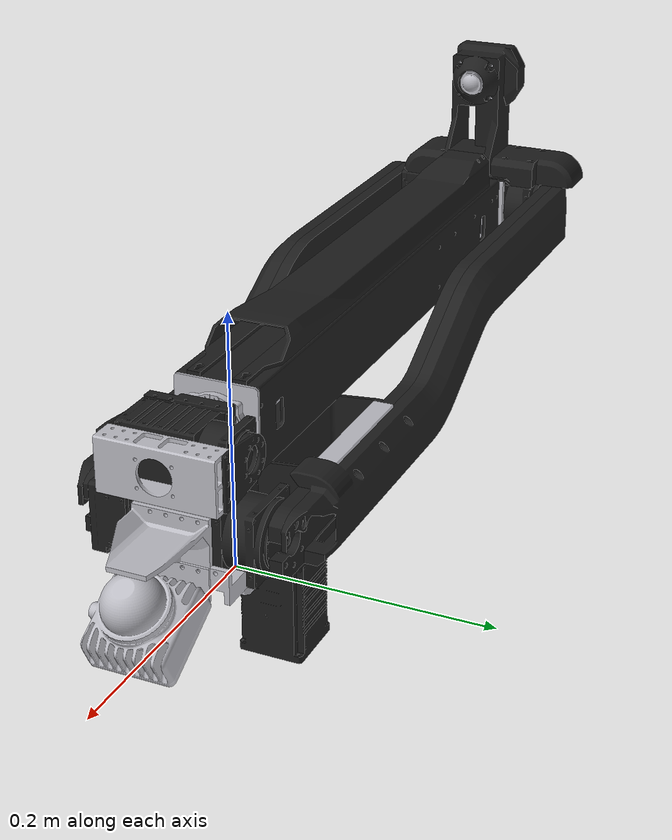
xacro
<?xml version="1.0" ?>
<robot name="armbasicmk2_rf" xmlns:xacro="http://www.ros.org/wiki/xacro">

<xacro:include filename="$(find armbasicmk2_rf_description)/urdf/armbasicmk2_rf.trans" />
<xacro:include filename="$(find armbasicmk2_rf_description)/urdf/armbasicmk2_rf.gazebo" />
<link name="base_link">
  <inertial>
    <origin xyz="6.800860772596329e-14 3.691305239142602e-18 0.007330088098766174" rpy="0 0 0"/>
    <mass value="0.10740993249483455"/>
    <inertia ixx="3.3e-05" iyy="4.4e-05" izz="7.3e-05" ixy="0.0" iyz="-0.0" ixz="-0.0"/>
  </inertial>
  <visual>
    <origin xyz="0 0 0" rpy="0 0 0"/>
    <geometry>
      <mesh filename="file://$(find armbasicmk2_rf_description)/meshes/base_link.stl" scale="0.001 0.001 0.001"/>
    </geometry>
    <material name="silver"/>
  </visual>
  <collision>
    <origin xyz="0 0 0" rpy="0 0 0"/>
    <geometry>
      <mesh filename="file://$(find armbasicmk2_rf_description)/meshes/base_link.stl" scale="0.001 0.001 0.001"/>
    </geometry>
  </collision>
</link>

<link name="motorattachment_rf_1">
  <inertial>
    <origin xyz="0.02927037371339208 1.1714766693985926e-06 0.010542658979876152" rpy="0 0 0"/>
    <mass value="0.2298484861301906"/>
    <inertia ixx="0.000186" iyy="0.0003" izz="0.000454" ixy="-0.0" iyz="-0.0" ixz="-3e-05"/>
  </inertial>
  <visual>
    <origin xyz="0.0 0.0 -0.027" rpy="0 0 0"/>
    <geometry>
      <mesh filename="file://$(find armbasicmk2_rf_description)/meshes/motorattachment_rf_1.stl" scale="0.001 0.001 0.001"/>
    </geometry>
    <material name="silver"/>
  </visual>
  <collision>
    <origin xyz="0.0 0.0 -0.027" rpy="0 0 0"/>
    <geometry>
      <mesh filename="file://$(find armbasicmk2_rf_description)/meshes/motorattachment_rf_1.stl" scale="0.001 0.001 0.001"/>
    </geometry>
  </collision>
</link>

<link name="sholder_motor_1">
  <inertial>
    <origin xyz="-0.026999999999992655 0.0017467971715640883 0.017998909469088657" rpy="0 0 0"/>
    <mass value="0.899469772806751"/>
    <inertia ixx="0.001425" iyy="0.0004" izz="0.001422" ixy="0.0" iyz="-0.0" ixz="0.0"/>
  </inertial>
  <visual>
    <origin xyz="-0.085 0.003 -0.052" rpy="0 0 0"/>
    <geometry>
      <mesh filename="file://$(find armbasicmk2_rf_description)/meshes/sholder_motor_1.stl" scale="0.001 0.001 0.001"/>
    </geometry>
    <material name="black"/>
  </visual>
  <collision>
    <origin xyz="-0.085 0.003 -0.052" rpy="0 0 0"/>
    <geometry>
      <mesh filename="file://$(find armbasicmk2_rf_description)/meshes/sholder_motor_1.stl" scale="0.001 0.001 0.001"/>
    </geometry>
  </collision>
</link>

<link name="cfrp_arm_under_1">
  <inertial>
    <origin xyz="-0.275257878200658 -0.06599999999999988 0.028271716393075658" rpy="0 0 0"/>
    <mass value="0.8180160660555457"/>
    <inertia ixx="0.004845" iyy="0.021811" izz="0.025227" ixy="-0.0" iyz="0.0" ixz="0.003056"/>
  </inertial>
  <visual>
    <origin xyz="-0.058 -0.066 -0.07" rpy="0 0 0"/>
    <geometry>
      <mesh filename="file://$(find armbasicmk2_rf_description)/meshes/cfrp_arm_under_1.stl" scale="0.001 0.001 0.001"/>
    </geometry>
    <material name="black"/>
  </visual>
  <collision>
    <origin xyz="-0.058 -0.066 -0.07" rpy="0 0 0"/>
    <geometry>
      <mesh filename="file://$(find armbasicmk2_rf_description)/meshes/cfrp_arm_under_1.stl" scale="0.001 0.001 0.001"/>
    </geometry>
  </collision>
</link>

<link name="armspacer3mm_1">
  <inertial>
    <origin xyz="0.005836245443908823 -0.06599999999999992 -0.02377415438949776" rpy="0 0 0"/>
    <mass value="0.1425135830976817"/>
    <inertia ixx="0.000291" iyy="0.000297" izz="0.000517" ixy="-0.0" iyz="0.0" ixz="1.6e-05"/>
  </inertial>
  <visual>
    <origin xyz="0.057 -0.066 -0.089" rpy="0 0 0"/>
    <geometry>
      <mesh filename="file://$(find armbasicmk2_rf_description)/meshes/armspacer3mm_1.stl" scale="0.001 0.001 0.001"/>
    </geometry>
    <material name="black"/>
  </visual>
  <collision>
    <origin xyz="0.057 -0.066 -0.089" rpy="0 0 0"/>
    <geometry>
      <mesh filename="file://$(find armbasicmk2_rf_description)/meshes/armspacer3mm_1.stl" scale="0.001 0.001 0.001"/>
    </geometry>
  </collision>
</link>

<link name="uchan_fix_1">
  <inertial>
    <origin xyz="2.0816681711721685e-17 -0.076 -0.018999999517699942" rpy="0 0 0"/>
    <mass value="0.07219571900435875"/>
    <inertia ixx="0.00039" iyy="0.000102" izz="0.000414" ixy="-0.0" iyz="0.0" ixz="-0.0"/>
  </inertial>
  <visual>
    <origin xyz="0.057 -0.076 -0.089" rpy="0 0 0"/>
    <geometry>
      <mesh filename="file://$(find armbasicmk2_rf_description)/meshes/uchan_fix_1.stl" scale="0.001 0.001 0.001"/>
    </geometry>
    <material name="silver"/>
  </visual>
  <collision>
    <origin xyz="0.057 -0.076 -0.089" rpy="0 0 0"/>
    <geometry>
      <mesh filename="file://$(find armbasicmk2_rf_description)/meshes/uchan_fix_1.stl" scale="0.001 0.001 0.001"/>
    </geometry>
  </collision>
</link>

<link name="elbow_motor_1">
  <inertial>
    <origin xyz="-1.2113498281673962e-06 -0.06173962440022222 4.82289042036399e-10" rpy="0 0 0"/>
    <mass value="0.8101156094698616"/>
    <inertia ixx="0.001155" iyy="0.000374" izz="0.001158" ixy="0.0" iyz="-0.0" ixz="-0.0"/>
  </inertial>
  <visual>
    <origin xyz="0.492 -0.066 -0.125" rpy="0 0 0"/>
    <geometry>
      <mesh filename="file://$(find armbasicmk2_rf_description)/meshes/elbow_motor_1.stl" scale="0.001 0.001 0.001"/>
    </geometry>
    <material name="black"/>
  </visual>
  <collision>
    <origin xyz="0.492 -0.066 -0.125" rpy="0 0 0"/>
    <geometry>
      <mesh filename="file://$(find armbasicmk2_rf_description)/meshes/elbow_motor_1.stl" scale="0.001 0.001 0.001"/>
    </geometry>
  </collision>
</link>

<link name="elbowmotorholder_1">
  <inertial>
    <origin xyz="0.01815412851963899 -0.032114384147279615 -0.026999999517700435" rpy="0 0 0"/>
    <mass value="0.11143415660851923"/>
    <inertia ixx="0.000119" iyy="7.7e-05" izz="7.1e-05" ixy="1e-06" iyz="0.0" ixz="0.0"/>
  </inertial>
  <visual>
    <origin xyz="0.474 -0.033 -0.152" rpy="0 0 0"/>
    <geometry>
      <mesh filename="file://$(find armbasicmk2_rf_description)/meshes/elbowmotorholder_1.stl" scale="0.001 0.001 0.001"/>
    </geometry>
    <material name="silver"/>
  </visual>
  <collision>
    <origin xyz="0.474 -0.033 -0.152" rpy="0 0 0"/>
    <geometry>
      <mesh filename="file://$(find armbasicmk2_rf_description)/meshes/elbowmotorholder_1.stl" scale="0.001 0.001 0.001"/>
    </geometry>
  </collision>
</link>

<link name="cfrppipe_1">
  <inertial>
    <origin xyz="0.23417559003974206 -0.017999999999999943 -0.029999999517700104" rpy="0 0 0"/>
    <mass value="0.4243002102107201"/>
    <inertia ixx="0.000554" iyy="0.00832" izz="0.008316" ixy="-0.0" iyz="0.0" ixz="-0.0"/>
  </inertial>
  <visual>
    <origin xyz="0.455 -0.018 -0.155" rpy="0 0 0"/>
    <geometry>
      <mesh filename="file://$(find armbasicmk2_rf_description)/meshes/cfrppipe_1.stl" scale="0.001 0.001 0.001"/>
    </geometry>
    <material name="black"/>
  </visual>
  <collision>
    <origin xyz="0.455 -0.018 -0.155" rpy="0 0 0"/>
    <geometry>
      <mesh filename="file://$(find armbasicmk2_rf_description)/meshes/cfrppipe_1.stl" scale="0.001 0.001 0.001"/>
    </geometry>
  </collision>
</link>

<link name="wrist_holder_1">
  <inertial>
    <origin xyz="0.00538687441616373 -0.017999999503902145 -0.030047351829839225" rpy="0 0 0"/>
    <mass value="0.0511359133055125"/>
    <inertia ixx="4.1e-05" iyy="2.1e-05" izz="2.1e-05" ixy="0.0" iyz="0.0" ixz="0.0"/>
  </inertial>
  <visual>
    <origin xyz="-0.014 -0.018 -0.155" rpy="0 0 0"/>
    <geometry>
      <mesh filename="file://$(find armbasicmk2_rf_description)/meshes/wrist_holder_1.stl" scale="0.001 0.001 0.001"/>
    </geometry>
    <material name="silver"/>
  </visual>
  <collision>
    <origin xyz="-0.014 -0.018 -0.155" rpy="0 0 0"/>
    <geometry>
      <mesh filename="file://$(find armbasicmk2_rf_description)/meshes/wrist_holder_1.stl" scale="0.001 0.001 0.001"/>
    </geometry>
  </collision>
</link>

<link name="innermotorspacer_1">
  <inertial>
    <origin xyz="-0.04607415020429145 0.029999999999997407 0.3140000004823033" rpy="0 0 0"/>
    <mass value="0.03944281423422913"/>
    <inertia ixx="4.3e-05" iyy="5.8e-05" izz="5.8e-05" ixy="0.0" iyz="0.0" ixz="0.0"/>
  </inertial>
  <visual>
    <origin xyz="0.318 0.03 0.189" rpy="0 0 0"/>
    <geometry>
      <mesh filename="file://$(find armbasicmk2_rf_description)/meshes/innermotorspacer_1.stl" scale="0.001 0.001 0.001"/>
    </geometry>
    <material name="silver"/>
  </visual>
  <collision>
    <origin xyz="0.318 0.03 0.189" rpy="0 0 0"/>
    <geometry>
      <mesh filename="file://$(find armbasicmk2_rf_description)/meshes/innermotorspacer_1.stl" scale="0.001 0.001 0.001"/>
    </geometry>
  </collision>
</link>

<link name="h54p_100_s500_r_dummy_1">
  <inertial>
    <origin xyz="-0.047039423233420585 0.02700000000000065 -0.018001318290201032" rpy="0 0 0"/>
    <mass value="0.7397940369372734"/>
    <inertia ixx="0.000324" iyy="0.000852" izz="0.00085" ixy="-0.0" iyz="0.0" ixz="-0.0"/>
  </inertial>
  <visual>
    <origin xyz="0.314 0.027 -0.143" rpy="0 0 0"/>
    <geometry>
      <mesh filename="file://$(find armbasicmk2_rf_description)/meshes/h54p_100_s500_r_dummy_1.stl" scale="0.001 0.001 0.001"/>
    </geometry>
    <material name="black"/>
  </visual>
  <collision>
    <origin xyz="0.314 0.027 -0.143" rpy="0 0 0"/>
    <geometry>
      <mesh filename="file://$(find armbasicmk2_rf_description)/meshes/h54p_100_s500_r_dummy_1.stl" scale="0.001 0.001 0.001"/>
    </geometry>
  </collision>
</link>

<link name="frange22_1">
  <inertial>
    <origin xyz="0.011970687825565818 1.0297993518602601e-13 4.823073052051541e-10" rpy="0 0 0"/>
    <mass value="0.030632417720102344"/>
    <inertia ixx="5e-06" iyy="6e-06" izz="6e-06" ixy="0.0" iyz="0.0" ixz="0.0"/>
  </inertial>
  <visual>
    <origin xyz="0.305 -0.0 -0.125" rpy="0 0 0"/>
    <geometry>
      <mesh filename="file://$(find armbasicmk2_rf_description)/meshes/frange22_1.stl" scale="0.001 0.001 0.001"/>
    </geometry>
    <material name="silver"/>
  </visual>
  <collision>
    <origin xyz="0.305 -0.0 -0.125" rpy="0 0 0"/>
    <geometry>
      <mesh filename="file://$(find armbasicmk2_rf_description)/meshes/frange22_1.stl" scale="0.001 0.001 0.001"/>
    </geometry>
  </collision>
</link>

<link name="cfrp_rotationver2525_1">
  <inertial>
    <origin xyz="0.13850000000000368 5.332715840388885e-16 -0.010999999517700282" rpy="0 0 0"/>
    <mass value="0.059325050880486084"/>
    <inertia ixx="1.1e-05" iyy="0.000434" izz="0.000434" ixy="-0.0" iyz="0.0" ixz="0.0"/>
  </inertial>
  <visual>
    <origin xyz="0.282 -0.0 -0.136" rpy="0 0 0"/>
    <geometry>
      <mesh filename="file://$(find armbasicmk2_rf_description)/meshes/cfrp_rotationver2525_1.stl" scale="0.001 0.001 0.001"/>
    </geometry>
    <material name="silver"/>
  </visual>
  <collision>
    <origin xyz="0.282 -0.0 -0.136" rpy="0 0 0"/>
    <geometry>
      <mesh filename="file://$(find armbasicmk2_rf_description)/meshes/cfrp_rotationver2525_1.stl" scale="0.001 0.001 0.001"/>
    </geometry>
  </collision>
</link>

<link name="tekubi_frange_22_1">
  <inertial>
    <origin xyz="0.017980403427289637 -2.401568404629577e-14 -0.01099999951769931" rpy="0 0 0"/>
    <mass value="0.05150765519894518"/>
    <inertia ixx="1e-05" iyy="1.2e-05" izz="1.3e-05" ixy="0.0" iyz="-0.0" ixz="0.0"/>
  </inertial>
  <visual>
    <origin xyz="0.005 -0.0 -0.136" rpy="0 0 0"/>
    <geometry>
      <mesh filename="file://$(find armbasicmk2_rf_description)/meshes/tekubi_frange_22_1.stl" scale="0.001 0.001 0.001"/>
    </geometry>
    <material name="silver"/>
  </visual>
  <collision>
    <origin xyz="0.005 -0.0 -0.136" rpy="0 0 0"/>
    <geometry>
      <mesh filename="file://$(find armbasicmk2_rf_description)/meshes/tekubi_frange_22_1.stl" scale="0.001 0.001 0.001"/>
    </geometry>
  </collision>
</link>

<link name="wrist2_motor_1">
  <inertial>
    <origin xyz="0.02553340999872098 -0.002308300673938236 -1.198818277980962e-08" rpy="0 0 0"/>
    <mass value="0.38815688084314187"/>
    <inertia ixx="0.000286" iyy="0.00012" izz="0.000292" ixy="-4e-06" iyz="-0.0" ixz="0.0"/>
  </inertial>
  <visual>
    <origin xyz="-0.031 -0.0 -0.125" rpy="0 0 0"/>
    <geometry>
      <mesh filename="file://$(find armbasicmk2_rf_description)/meshes/wrist2_motor_1.stl" scale="0.001 0.001 0.001"/>
    </geometry>
    <material name="black"/>
  </visual>
  <collision>
    <origin xyz="-0.031 -0.0 -0.125" rpy="0 0 0"/>
    <geometry>
      <mesh filename="file://$(find armbasicmk2_rf_description)/meshes/wrist2_motor_1.stl" scale="0.001 0.001 0.001"/>
    </geometry>
  </collision>
</link>

<link name="frp42_h02_1">
  <inertial>
    <origin xyz="0.01632608019843374 -0.044792311757179015 4.764381666966244e-10" rpy="0 0 0"/>
    <mass value="0.027142982651033515"/>
    <inertia ixx="6.2e-05" iyy="9e-06" izz="6.4e-05" ixy="-1e-06" iyz="0.0" ixz="0.0"/>
  </inertial>
  <visual>
    <origin xyz="-0.058 -0.045 -0.125" rpy="0 0 0"/>
    <geometry>
      <mesh filename="file://$(find armbasicmk2_rf_description)/meshes/frp42_h02_1.stl" scale="0.001 0.001 0.001"/>
    </geometry>
    <material name="black"/>
  </visual>
  <collision>
    <origin xyz="-0.058 -0.045 -0.125" rpy="0 0 0"/>
    <geometry>
      <mesh filename="file://$(find armbasicmk2_rf_description)/meshes/frp42_h02_1.stl" scale="0.001 0.001 0.001"/>
    </geometry>
  </collision>
</link>

<link name="hand_base_link_1">
  <inertial>
    <origin xyz="0.0036106433250461117 -0.04499999999991971 3.7601766145201054e-10" rpy="0 0 0"/>
    <mass value="0.077839787821002"/>
    <inertia ixx="8.6e-05" iyy="2.2e-05" izz="7e-05" ixy="-0.0" iyz="0.0" ixz="-0.0"/>
  </inertial>
  <visual>
    <origin xyz="-0.094 -0.045 -0.125" rpy="0 0 0"/>
    <geometry>
      <mesh filename="file://$(find armbasicmk2_rf_description)/meshes/hand_base_link_1.stl" scale="0.001 0.001 0.001"/>
    </geometry>
    <material name="silver"/>
  </visual>
  <collision>
    <origin xyz="-0.094 -0.045 -0.125" rpy="0 0 0"/>
    <geometry>
      <mesh filename="file://$(find armbasicmk2_rf_description)/meshes/hand_base_link_1.stl" scale="0.001 0.001 0.001"/>
    </geometry>
  </collision>
</link>

<link name="rf67f_outer_1">
  <inertial>
    <origin xyz="-1.0077634243141633e-15 -9.844948834505567e-18 0.0034161279081124495" rpy="0 0 0"/>
    <mass value="0.1131127772767721"/>
    <inertia ixx="9e-05" iyy="9e-05" izz="0.000178" ixy="0.0" iyz="0.0" ixz="-0.0"/>
  </inertial>
  <visual>
    <origin xyz="0.0 -0.0 -0.014" rpy="0 0 0"/>
    <geometry>
      <mesh filename="file://$(find armbasicmk2_rf_description)/meshes/rf67f_outer_1.stl" scale="0.001 0.001 0.001"/>
    </geometry>
    <material name="grey"/>
  </visual>
  <collision>
    <origin xyz="0.0 -0.0 -0.014" rpy="0 0 0"/>
    <geometry>
      <mesh filename="file://$(find armbasicmk2_rf_description)/meshes/rf67f_outer_1.stl" scale="0.001 0.001 0.001"/>
    </geometry>
  </collision>
</link>

<link name="rf67f_inner_1">
  <inertial>
    <origin xyz="-1.4410006952401435e-15 -6.314291484426093e-17 0.004082844222894467" rpy="0 0 0"/>
    <mass value="0.07950194317963732"/>
    <inertia ixx="3.4e-05" iyy="3.4e-05" izz="6.7e-05" ixy="0.0" iyz="-0.0" ixz="-0.0"/>
  </inertial>
  <visual>
    <origin xyz="-0.0 -0.0 -0.014" rpy="0 0 0"/>
    <geometry>
      <mesh filename="file://$(find armbasicmk2_rf_description)/meshes/rf67f_inner_1.stl" scale="0.001 0.001 0.001"/>
    </geometry>
    <material name="grey"/>
  </visual>
  <collision>
    <origin xyz="-0.0 -0.0 -0.014" rpy="0 0 0"/>
    <geometry>
      <mesh filename="file://$(find armbasicmk2_rf_description)/meshes/rf67f_inner_1.stl" scale="0.001 0.001 0.001"/>
    </geometry>
  </collision>
</link>

<link name="base_gear_1">
  <inertial>
    <origin xyz="-2.8478488522626362e-15 1.488595974649606e-17 0.005053416523161779" rpy="0 0 0"/>
    <mass value="0.054392339435549844"/>
    <inertia ixx="5.4e-05" iyy="5.4e-05" izz="0.000108" ixy="-0.0" iyz="-0.0" ixz="0.0"/>
  </inertial>
  <visual>
    <origin xyz="0.0 -0.0 -0.017" rpy="0 0 0"/>
    <geometry>
      <mesh filename="file://$(find armbasicmk2_rf_description)/meshes/base_gear_1.stl" scale="0.001 0.001 0.001"/>
    </geometry>
    <material name="blue"/>
  </visual>
  <collision>
    <origin xyz="0.0 -0.0 -0.017" rpy="0 0 0"/>
    <geometry>
      <mesh filename="file://$(find armbasicmk2_rf_description)/meshes/base_gear_1.stl" scale="0.001 0.001 0.001"/>
    </geometry>
  </collision>
</link>

<link name="h54p_200_s500_r_dummy_1">
  <inertial>
    <origin xyz="-1.1228510418404003e-06 6.282882880593122e-17 -0.0650801142077765" rpy="0 0 0"/>
    <mass value="0.8550089028499639"/>
    <inertia ixx="0.001272" iyy="0.001275" izz="0.000376" ixy="-0.0" iyz="0.0" ixz="-0.0"/>
  </inertial>
  <visual>
    <origin xyz="0.0765 -0.0 -0.017" rpy="0 0 0"/>
    <geometry>
      <mesh filename="file://$(find armbasicmk2_rf_description)/meshes/h54p_200_s500_r_dummy_1.stl" scale="0.001 0.001 0.001"/>
    </geometry>
    <material name="black"/>
  </visual>
  <collision>
    <origin xyz="0.0765 -0.0 -0.017" rpy="0 0 0"/>
    <geometry>
      <mesh filename="file://$(find armbasicmk2_rf_description)/meshes/h54p_200_s500_r_dummy_1.stl" scale="0.001 0.001 0.001"/>
    </geometry>
  </collision>
</link>

<link name="motorgear_1.5_48_1">
  <inertial>
    <origin xyz="-0.07649999999999393 6.2920573078456705e-18 0.0072961541095629846" rpy="0 0 0"/>
    <mass value="0.01764917143275983"/>
    <inertia ixx="4e-06" iyy="4e-06" izz="8e-06" ixy="0.0" iyz="-0.0" ixz="0.0"/>
  </inertial>
  <visual>
    <origin xyz="-0.0 -0.0 -0.014" rpy="0 0 0"/>
    <geometry>
      <mesh filename="file://$(find armbasicmk2_rf_description)/meshes/motorgear_1.5_48_1.stl" scale="0.001 0.001 0.001"/>
    </geometry>
    <material name="blue"/>
  </visual>
  <collision>
    <origin xyz="-0.0 -0.0 -0.014" rpy="0 0 0"/>
    <geometry>
      <mesh filename="file://$(find armbasicmk2_rf_description)/meshes/motorgear_1.5_48_1.stl" scale="0.001 0.001 0.001"/>
    </geometry>
  </collision>
</link>

<link name="armcover_1">
  <inertial>
    <origin xyz="-0.2666814516172862 0.07599999990589017 0.02900816674241878" rpy="0 0 0"/>
    <mass value="0.22405271694333478"/>
    <inertia ixx="0.001902" iyy="0.00575" izz="0.007229" ixy="-0.0" iyz="-0.0" ixz="0.000771"/>
  </inertial>
  <visual>
    <origin xyz="-0.058 0.076 -0.07" rpy="0 0 0"/>
    <geometry>
      <mesh filename="file://$(find armbasicmk2_rf_description)/meshes/armcover_1.stl" scale="0.001 0.001 0.001"/>
    </geometry>
    <material name="black"/>
  </visual>
  <collision>
    <origin xyz="-0.058 0.076 -0.07" rpy="0 0 0"/>
    <geometry>
      <mesh filename="file://$(find armbasicmk2_rf_description)/meshes/armcover_1.stl" scale="0.001 0.001 0.001"/>
    </geometry>
  </collision>
</link>

<link name="arm_cover2_1">
  <inertial>
    <origin xyz="0.21346071846015077 -0.017999999999980643 0.008368812565760275" rpy="0 0 0"/>
    <mass value="0.1460650540282831"/>
    <inertia ixx="6.5e-05" iyy="0.002275" izz="0.002328" ixy="0.0" iyz="-0.0" ixz="1.1e-05"/>
  </inertial>
  <visual>
    <origin xyz="0.455 -0.018 -0.1575" rpy="0 0 0"/>
    <geometry>
      <mesh filename="file://$(find armbasicmk2_rf_description)/meshes/arm_cover2_1.stl" scale="0.001 0.001 0.001"/>
    </geometry>
    <material name="black"/>
  </visual>
  <collision>
    <origin xyz="0.455 -0.018 -0.1575" rpy="0 0 0"/>
    <geometry>
      <mesh filename="file://$(find armbasicmk2_rf_description)/meshes/arm_cover2_1.stl" scale="0.001 0.001 0.001"/>
    </geometry>
  </collision>
</link>

<link name="elbow_cover_camera_1">
  <inertial>
    <origin xyz="-0.021334728698876648 -0.026944761600866025 0.04254785042733461" rpy="0 0 0"/>
    <mass value="0.13477384533898337"/>
    <inertia ixx="0.000318" iyy="0.000221" izz="0.000169" ixy="3e-06" iyz="2.4e-05" ixz="8e-06"/>
  </inertial>
  <visual>
    <origin xyz="0.474 -0.033 -0.156" rpy="0 0 0"/>
    <geometry>
      <mesh filename="file://$(find armbasicmk2_rf_description)/meshes/elbow_cover_camera_1.stl" scale="0.001 0.001 0.001"/>
    </geometry>
    <material name="black"/>
  </visual>
  <collision>
    <origin xyz="0.474 -0.033 -0.156" rpy="0 0 0"/>
    <geometry>
      <mesh filename="file://$(find armbasicmk2_rf_description)/meshes/elbow_cover_camera_1.stl" scale="0.001 0.001 0.001"/>
    </geometry>
  </collision>
</link>

<link name="camera_elbow_link_1">
  <inertial>
    <origin xyz="-0.005691855026626502 0.00030614832180345537 0.000504853995332899" rpy="0 0 0"/>
    <mass value="0.16222955272682651"/>
    <inertia ixx="3.4e-05" iyy="3e-05" izz="3.2e-05" ixy="2e-06" iyz="0.0" ixz="1e-06"/>
  </inertial>
  <visual>
    <origin xyz="0.482 -0.0 -0.242" rpy="0 0 0"/>
    <geometry>
      <mesh filename="file://$(find armbasicmk2_rf_description)/meshes/camera_elbow_link_1.stl" scale="0.001 0.001 0.001"/>
    </geometry>
    <material name="silver"/>
  </visual>
  <collision>
    <origin xyz="0.482 -0.0 -0.242" rpy="0 0 0"/>
    <geometry>
      <mesh filename="file://$(find armbasicmk2_rf_description)/meshes/camera_elbow_link_1.stl" scale="0.001 0.001 0.001"/>
    </geometry>
  </collision>
</link>

<link name="mid360_plate_1">
  <inertial>
    <origin xyz="0.017354318881491443 0.0025187745643894402 -0.027340671376016742" rpy="0 0 0"/>
    <mass value="0.025677154614472585"/>
    <inertia ixx="1.2e-05" iyy="1.1e-05" izz="1.4e-05" ixy="0.0" iyz="-0.0" ixz="5e-06"/>
  </inertial>
  <visual>
    <origin xyz="-0.089 0.003 -0.052" rpy="0 0 0"/>
    <geometry>
      <mesh filename="file://$(find armbasicmk2_rf_description)/meshes/mid360_plate_1.stl" scale="0.001 0.001 0.001"/>
    </geometry>
    <material name="silver"/>
  </visual>
  <collision>
    <origin xyz="-0.089 0.003 -0.052" rpy="0 0 0"/>
    <geometry>
      <mesh filename="file://$(find armbasicmk2_rf_description)/meshes/mid360_plate_1.stl" scale="0.001 0.001 0.001"/>
    </geometry>
  </collision>
</link>

<link name="front_lidar_1">
  <inertial>
    <origin xyz="-0.004726325044073165 0.0237998672835044 0.027800261427818065" rpy="0 0 0"/>
    <mass value="1.079408458706307"/>
    <inertia ixx="0.000548" iyy="0.000509" izz="0.000545" ixy="0.0" iyz="0.0" ixz="-2e-06"/>
  </inertial>
  <visual>
    <origin xyz="-0.135167 0.024 -0.0055" rpy="0 0 0"/>
    <geometry>
      <mesh filename="file://$(find armbasicmk2_rf_description)/meshes/front_lidar_1.stl" scale="0.001 0.001 0.001"/>
    </geometry>
    <material name="silver"/>
  </visual>
  <collision>
    <origin xyz="-0.135167 0.024 -0.0055" rpy="0 0 0"/>
    <geometry>
      <mesh filename="file://$(find armbasicmk2_rf_description)/meshes/front_lidar_1.stl" scale="0.001 0.001 0.001"/>
    </geometry>
  </collision>
</link>

<link name="lidar_guard">
  <inertial>
    <origin xyz="0.017169099723025508 0.0029686100141086778 -0.014461657623726268" rpy="0 0 0"/>
    <mass value="0.20340991567725594"/>
    <inertia ixx="5.5e-05" iyy="6.5e-05" izz="9.8e-05" ixy="-0.0" iyz="0.0" ixz="-3e-06"/>
  </inertial>
  <visual>
    <origin xyz="-0.085 0.003 -0.088" rpy="0 0 0"/>
    <geometry>
      <mesh filename="package://armbasicmk2_rf_description/meshes/lidar_guard.stl" scale="0.001 0.001 0.001"/>
    </geometry>
    <material name="silver"/>
  </visual>
  <collision>
    <origin xyz="-0.085 0.003 -0.088" rpy="0 0 0"/>
    <geometry>
      <mesh filename="package://armbasicmk2_rf_description/meshes/lidar_guard.stl" scale="0.001 0.001 0.001"/>
    </geometry>
  </collision>
</link>

<joint name="motorattachment_gear" type="fixed">
  <origin xyz="0.0 -0.0 0.01" rpy="0 0 0"/>
  <parent link="base_gear_1"/>
  <child link="motorattachment_rf_1"/>
</joint>

<joint name="motorattachment_motor" type="fixed">
  <origin xyz="0.085 -0.003 0.025" rpy="0 0 0"/>
  <parent link="motorattachment_rf_1"/>
  <child link="sholder_motor_1"/>
</joint>

<joint name="sholder_joint" type="revolute">
  <origin xyz="-0.027 0.069 0.018" rpy="0 0 0"/>
  <parent link="sholder_motor_1"/>
  <child link="cfrp_arm_under_1"/>
  <axis xyz="0.0 1.0 0.0"/>
  <limit upper="3.141593" lower="0.0" effort="100" velocity="100"/>
</joint>

<joint name="armspacer_arm" type="fixed">
  <origin xyz="-0.115 0.0 0.019" rpy="0 0 0"/>
  <parent link="cfrp_arm_under_1"/>
  <child link="armspacer3mm_1"/>
</joint>

<joint name="uchan1" type="fixed">
  <origin xyz="-0.115 0.01 0.019" rpy="0 0 0"/>
  <parent link="cfrp_arm_under_1"/>
  <child link="uchan_fix_1"/>
</joint>

<joint name="elbow_joint" type="revolute">
  <origin xyz="-0.55 0.0 0.055" rpy="0 0 0"/>
  <parent link="cfrp_arm_under_1"/>
  <child link="elbow_motor_1"/>
  <axis xyz="-0.0 -1.0 -0.0"/>
  <limit upper="3.141593" lower="0.0" effort="100" velocity="100"/>
</joint>

<joint name="armholder_elbowmotor" type="fixed">
  <origin xyz="0.018 -0.033 0.027" rpy="0 0 0"/>
  <parent link="elbow_motor_1"/>
  <child link="elbowmotorholder_1"/>
</joint>

<joint name="armholder_cfrparm" type="fixed">
  <origin xyz="0.019 -0.015 0.003" rpy="0 0 0"/>
  <parent link="elbowmotorholder_1"/>
  <child link="cfrppipe_1"/>
</joint>

<joint name="cfrparm_wrist" type="fixed">
  <origin xyz="0.469 0.0 0.0" rpy="0 0 0"/>
  <parent link="cfrppipe_1"/>
  <child link="wrist_holder_1"/>
</joint>

<joint name="cfrparm_motorspacer" type="fixed">
  <origin xyz="0.137 -0.048 -0.344" rpy="0 0 0"/>
  <parent link="cfrppipe_1"/>
  <child link="innermotorspacer_1"/>
</joint>

<joint name="motorspacer_wristmotor" type="fixed">
  <origin xyz="0.004 0.003 0.332" rpy="0 0 0"/>
  <parent link="innermotorspacer_1"/>
  <child link="h54p_100_s500_r_dummy_1"/>
</joint>

<joint name="wrist_joint" type="revolute">
  <origin xyz="0.009 0.027 -0.018" rpy="0 0 0"/>
  <parent link="h54p_100_s500_r_dummy_1"/>
  <child link="frange22_1"/>
  <axis xyz="1.0 0.0 -0.0"/>
  <limit upper="3.141593" lower="-3.141593" effort="100" velocity="100"/>
</joint>

<joint name="wristmotorfrange_cfrppipe" type="fixed">
  <origin xyz="0.023 0.0 0.011" rpy="0 0 0"/>
  <parent link="frange22_1"/>
  <child link="cfrp_rotationver2525_1"/>
</joint>

<joint name="cfrppipe_wristfrange" type="fixed">
  <origin xyz="0.277 0.0 0.0" rpy="0 0 0"/>
  <parent link="cfrp_rotationver2525_1"/>
  <child link="tekubi_frange_22_1"/>
</joint>

<joint name="motorholder_wristfrange" type="fixed">
  <origin xyz="0.036 0.0 -0.011" rpy="0 0 0"/>
  <parent link="tekubi_frange_22_1"/>
  <child link="wrist2_motor_1"/>
</joint>

<joint name="wrist_joint2" type="revolute">
  <origin xyz="0.027 0.045 0.0" rpy="0 0 0"/>
  <parent link="wrist2_motor_1"/>
  <child link="frp42_h02_1"/>
  <axis xyz="-0.0 1.0 -0.0"/>
  <limit upper="1.570796" lower="-1.570796" effort="100" velocity="100"/>
</joint>

<joint name="wrist2_hand" type="fixed">
  <origin xyz="0.036 0.0 0.0" rpy="0 0 0"/>
  <parent link="frp42_h02_1"/>
  <child link="hand_base_link_1"/>
</joint>

<joint name="base_joint" type="continuous">
  <origin xyz="-0.0 0.0 0.0" rpy="0 0 0"/>
  <parent link="rf67f_inner_1"/>
  <child link="rf67f_outer_1"/>
  <axis xyz="0.0 -0.0 1.0"/>
</joint>

<joint name="ring_base" type="fixed">
  <origin xyz="0.0 0.0 0.014" rpy="0 0 0"/>
  <parent link="base_link"/>
  <child link="rf67f_inner_1"/>
</joint>

<joint name="ring_gear" type="fixed">
  <origin xyz="0.0 0.0 0.003" rpy="0 0 0"/>
  <parent link="rf67f_outer_1"/>
  <child link="base_gear_1"/>
</joint>

<joint name="motorgear_motor" type="fixed">
  <origin xyz="-0.0765 0.0 0.003" rpy="0 0 0"/>
  <parent link="motorgear_1.5_48_1"/>
  <child link="h54p_200_s500_r_dummy_1"/>
</joint>

<joint name="b_gear_s_gear" type="fixed">
  <origin xyz="0.0 0.0 0.014" rpy="0 0 0"/>
  <parent link="base_link"/>
  <child link="motorgear_1.5_48_1"/>
</joint>

<joint name="cover1" type="fixed">
  <origin xyz="0.0 -0.142 0.0" rpy="0 0 0"/>
  <parent link="cfrp_arm_under_1"/>
  <child link="armcover_1"/>
</joint>

<joint name="cover2" type="fixed">
  <origin xyz="0.0 0.0 0.0025" rpy="0 0 0"/>
  <parent link="cfrppipe_1"/>
  <child link="arm_cover2_1"/>
</joint>

<joint name="cover_elbow" type="fixed">
  <origin xyz="0.0 0.0 0.004" rpy="0 0 0"/>
  <parent link="elbowmotorholder_1"/>
  <child link="elbow_cover_camera_1"/>
</joint>

<joint name="elbow_camera" type="fixed">
  <origin xyz="-0.008 -0.033 0.086" rpy="0 0 0"/>
  <parent link="elbow_cover_camera_1"/>
  <child link="camera_elbow_link_1"/>
</joint>

<joint name="lidar_plate" type="fixed">
  <origin xyz="0.089 -0.003 0.025" rpy="0 0 0"/>
  <parent link="motorattachment_rf_1"/>
  <child link="mid360_plate_1"/>
</joint>

<joint name="lidar" type="fixed">
  <origin xyz="0.046167 -0.021 -0.0465" rpy="0 0 0"/>
  <parent link="mid360_plate_1"/>
  <child link="front_lidar_1"/>
</joint>

<joint name="lidar_guard" type="fixed">
  <origin xyz="0.0 0.0 0.036" rpy="0 0 0"/>
  <parent link="sholder_motor_1"/>
  <child link="lidar_guard"/>
</joint>

</robot>

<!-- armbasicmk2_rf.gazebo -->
<robot name="armbasicmk2_rf" xmlns:xacro="http://www.ros.org/wiki/xacro" >

<xacro:property name="body_color" value="Gazebo/Silver" />

<gazebo>
  <plugin name="control" filename="libgazebo_ros_control.so"/>
</gazebo>
<gazebo reference="base_link">
  <material>${body_color}</material>
  <mu1>0.2</mu1>
  <mu2>0.2</mu2>
  <self_collide>true</self_collide>
  <gravity>true</gravity>
</gazebo>

<gazebo reference="motorattachment_rf_1">
  <material>${body_color}</material>
  <mu1>0.2</mu1>
  <mu2>0.2</mu2>
  <self_collide>true</self_collide>
</gazebo>

<gazebo reference="sholder_motor_1">
  <material>${body_color}</material>
  <mu1>0.2</mu1>
  <mu2>0.2</mu2>
  <self_collide>true</self_collide>
</gazebo>

<gazebo reference="cfrp_arm_under_1">
  <material>${body_color}</material>
  <mu1>0.2</mu1>
  <mu2>0.2</mu2>
  <self_collide>true</self_collide>
</gazebo>

<gazebo reference="armspacer3mm_1">
  <material>${body_color}</material>
  <mu1>0.2</mu1>
  <mu2>0.2</mu2>
  <self_collide>true</self_collide>
</gazebo>

<gazebo reference="uchan_fix_1">
  <material>${body_color}</material>
  <mu1>0.2</mu1>
  <mu2>0.2</mu2>
  <self_collide>true</self_collide>
</gazebo>

<gazebo reference="elbow_motor_1">
  <material>${body_color}</material>
  <mu1>0.2</mu1>
  <mu2>0.2</mu2>
  <self_collide>true</self_collide>
</gazebo>

<gazebo reference="elbowmotorholder_1">
  <material>${body_color}</material>
  <mu1>0.2</mu1>
  <mu2>0.2</mu2>
  <self_collide>true</self_collide>
</gazebo>

<gazebo reference="cfrppipe_1">
  <material>${body_color}</material>
  <mu1>0.2</mu1>
  <mu2>0.2</mu2>
  <self_collide>true</self_collide>
</gazebo>

<gazebo reference="wrist_holder_1">
  <material>${body_color}</material>
  <mu1>0.2</mu1>
  <mu2>0.2</mu2>
  <self_collide>true</self_collide>
</gazebo>

<gazebo reference="innermotorspacer_1">
  <material>${body_color}</material>
  <mu1>0.2</mu1>
  <mu2>0.2</mu2>
  <self_collide>true</self_collide>
</gazebo>

<gazebo reference="h54p_100_s500_r_dummy_1">
  <material>${body_color}</material>
  <mu1>0.2</mu1>
  <mu2>0.2</mu2>
  <self_collide>true</self_collide>
</gazebo>

<gazebo reference="frange22_1">
  <material>${body_color}</material>
  <mu1>0.2</mu1>
  <mu2>0.2</mu2>
  <self_collide>true</self_collide>
</gazebo>

<gazebo reference="cfrp_rotationver2525_1">
  <material>${body_color}</material>
  <mu1>0.2</mu1>
  <mu2>0.2</mu2>
  <self_collide>true</self_collide>
</gazebo>

<gazebo reference="tekubi_frange_22_1">
  <material>${body_color}</material>
  <mu1>0.2</mu1>
  <mu2>0.2</mu2>
  <self_collide>true</self_collide>
</gazebo>

<gazebo reference="wrist2_motor_1">
  <material>${body_color}</material>
  <mu1>0.2</mu1>
  <mu2>0.2</mu2>
  <self_collide>true</self_collide>
</gazebo>

<gazebo reference="frp42_h02_1">
  <material>${body_color}</material>
  <mu1>0.2</mu1>
  <mu2>0.2</mu2>
  <self_collide>true</self_collide>
</gazebo>

<gazebo reference="hand_base_link_1">
  <material>${body_color}</material>
  <mu1>0.2</mu1>
  <mu2>0.2</mu2>
  <self_collide>true</self_collide>
</gazebo>

<gazebo reference="rf67f_outer_1">
  <material>${body_color}</material>
  <mu1>0.2</mu1>
  <mu2>0.2</mu2>
  <self_collide>true</self_collide>
</gazebo>

<gazebo reference="rf67f_inner_1">
  <material>${body_color}</material>
  <mu1>0.2</mu1>
  <mu2>0.2</mu2>
  <self_collide>true</self_collide>
</gazebo>

<gazebo reference="base_gear_1">
  <material>${body_color}</material>
  <mu1>0.2</mu1>
  <mu2>0.2</mu2>
  <self_collide>true</self_collide>
</gazebo>

<gazebo reference="h54p_200_s500_r_dummy_1">
  <material>${body_color}</material>
  <mu1>0.2</mu1>
  <mu2>0.2</mu2>
  <self_collide>true</self_collide>
</gazebo>

<gazebo reference="motorgear_1.5_48_1">
  <material>${body_color}</material>
  <mu1>0.2</mu1>
  <mu2>0.2</mu2>
  <self_collide>true</self_collide>
</gazebo>

<gazebo reference="armcover_1">
  <material>${body_color}</material>
  <mu1>0.2</mu1>
  <mu2>0.2</mu2>
  <self_collide>true</self_collide>
</gazebo>

<gazebo reference="arm_cover2_1">
  <material>${body_color}</material>
  <mu1>0.2</mu1>
  <mu2>0.2</mu2>
  <self_collide>true</self_collide>
</gazebo>

<gazebo reference="elbow_cover_camera_1">
  <material>${body_color}</material>
  <mu1>0.2</mu1>
  <mu2>0.2</mu2>
  <self_collide>true</self_collide>
</gazebo>

<gazebo reference="camera_elbow_link_1">
  <material>${body_color}</material>
  <mu1>0.2</mu1>
  <mu2>0.2</mu2>
  <self_collide>true</self_collide>
</gazebo>

<gazebo reference="mid360_plate_1">
  <material>${body_color}</material>
  <mu1>0.2</mu1>
  <mu2>0.2</mu2>
  <self_collide>true</self_collide>
</gazebo>

<gazebo reference="front_lidar_1">
  <material>${body_color}</material>
  <mu1>0.2</mu1>
  <mu2>0.2</mu2>
  <self_collide>true</self_collide>
</gazebo>

</robot>
